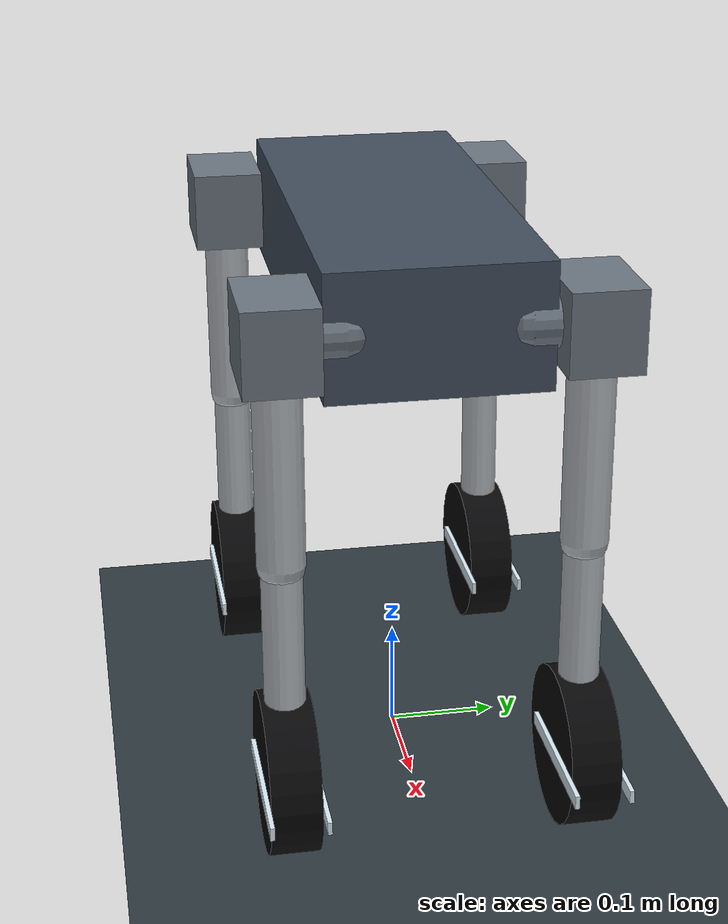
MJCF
<mujoco model="minidog_16dof_20kg">
  <compiler angle="radian" autolimits="true" />
  <size njmax="256" nconmax="128" />
  <option timestep="0.005" iterations="80" solver="Newton" cone="pyramidal" />

  <default>
    <joint damping="0.08" armature="0.01" />
    <geom condim="3" contype="1" conaffinity="1" friction="0.8 0.01 0.001" solref="0.005 1" solimp="0.9 0.99 0.001" />
  </default>

  <asset>
    <material name="body_mat" rgba="0.25 0.30 0.36 1" />
    <material name="hip_mat" rgba="0.42 0.46 0.50 1" />
    <material name="leg_mat" rgba="0.70 0.72 0.74 1" />
    <material name="wheel_mat" rgba="0.03 0.03 0.035 1" />
    <material name="wheel_stripe_mat" rgba="0.85 0.92 0.96 1" />
    <material name="floor_mat" rgba="0.18 0.22 0.24 1" />
  </asset>

  <worldbody>
    <light name="key_light" directional="true" pos="-1 1 3" dir="0 0 -1" />
    <geom name="floor" type="plane" size="20 20 0.05" material="floor_mat" />

    <body name="base_link" pos="0 0 0.48">
      <freejoint name="floating_base" />
      <inertial pos="0 0 0" mass="11.360048" diaginertia="0.045630 0.194730 0.217450" />
      <geom name="base_collision" type="box" size="0.22 0.095 0.055" material="body_mat" />
      <site name="base_site" pos="0 0 0" size="0.005" rgba="1 0 0 1" />

      <body name="fl_abad_link" pos="0.20128 0.07500 0">
        <joint name="fl_abad_joint" type="hinge" axis="-1 0 0" range="-0.60 0.60" actuatorfrcrange="-50 50" />
        <inertial pos="0 0.02750 0" mass="0.120473" diaginertia="0.000050 0.000050 0.000050" />
        <geom name="fl_abad_collision" type="capsule" fromto="0 0 0 0 0.05500 0" size="0.024" material="hip_mat" />
        <body name="fl_hip_link" pos="0 0.05500 0">
          <inertial pos="0 0 0" mass="0.300000" diaginertia="0.000260 0.000260 0.000260" />
          <geom name="fl_hip_collision" type="box" size="0.045 0.032 0.036" material="hip_mat" />
          <body name="fl_thigh_link">
            <joint name="fl_hip_joint" type="hinge" axis="0 -1 0" range="-2.30 2.60" actuatorfrcrange="-50 50" />
            <inertial pos="0 0 -0.10000" mass="0.913236" diaginertia="0.003350 0.003250 0.000340" />
            <geom name="fl_thigh_collision" type="capsule" fromto="0 0 0 0 0 -0.20000" size="0.021" material="leg_mat" />
            <body name="fl_shank_link" pos="0 0 -0.20000">
              <joint name="fl_knee_joint" type="hinge" axis="0 -1 0" range="-2.80 2.80" actuatorfrcrange="-50 50" />
              <inertial pos="0 0 -0.10000" mass="0.530617" diaginertia="0.001850 0.001800 0.000200" />
              <geom name="fl_shank_collision" type="capsule" fromto="0 0 0 0 0 -0.20000" size="0.018" material="leg_mat" />
              <body name="fl_wheel_link" pos="0 0 -0.20000">
                <joint name="fl_wheel_joint" type="hinge" axis="0 -1 0" damping="0.02" armature="0.002" actuatorfrcrange="-12 12" />
                <inertial pos="0 0 0" mass="0.295662" diaginertia="0.000791 0.001533 0.000791" />
                <geom name="fl_wheel_collision" type="cylinder" size="0.072 0.022" euler="1.57079632679 0 0" material="wheel_mat" friction="1.0 0.01 0.001" />
                <geom name="fl_wheel_stripe_outer" type="box" pos="0.025 0.024 0" size="0.071 0.002 0.006" material="wheel_stripe_mat" contype="0" conaffinity="0" />
                <geom name="fl_wheel_stripe_inner" type="box" pos="0.025 -0.024 0" size="0.071 0.002 0.006" material="wheel_stripe_mat" contype="0" conaffinity="0" />
              </body>
            </body>
          </body>
        </body>
      </body>

      <body name="fr_abad_link" pos="0.20128 -0.07500 0">
        <joint name="fr_abad_joint" type="hinge" axis="-1 0 0" range="-0.60 0.60" actuatorfrcrange="-50 50" />
        <inertial pos="0 -0.02750 0" mass="0.120473" diaginertia="0.000050 0.000050 0.000050" />
        <geom name="fr_abad_collision" type="capsule" fromto="0 0 0 0 -0.05500 0" size="0.024" material="hip_mat" />
        <body name="fr_hip_link" pos="0 -0.05500 0">
          <inertial pos="0 0 0" mass="0.300000" diaginertia="0.000260 0.000260 0.000260" />
          <geom name="fr_hip_collision" type="box" size="0.045 0.032 0.036" material="hip_mat" />
          <body name="fr_thigh_link">
            <joint name="fr_hip_joint" type="hinge" axis="0 -1 0" range="-2.30 2.60" actuatorfrcrange="-50 50" />
            <inertial pos="0 0 -0.10000" mass="0.913236" diaginertia="0.003350 0.003250 0.000340" />
            <geom name="fr_thigh_collision" type="capsule" fromto="0 0 0 0 0 -0.20000" size="0.021" material="leg_mat" />
            <body name="fr_shank_link" pos="0 0 -0.20000">
              <joint name="fr_knee_joint" type="hinge" axis="0 -1 0" range="-2.80 2.80" actuatorfrcrange="-50 50" />
              <inertial pos="0 0 -0.10000" mass="0.530617" diaginertia="0.001850 0.001800 0.000200" />
              <geom name="fr_shank_collision" type="capsule" fromto="0 0 0 0 0 -0.20000" size="0.018" material="leg_mat" />
              <body name="fr_wheel_link" pos="0 0 -0.20000">
                <joint name="fr_wheel_joint" type="hinge" axis="0 -1 0" damping="0.02" armature="0.002" actuatorfrcrange="-12 12" />
                <inertial pos="0 0 0" mass="0.295662" diaginertia="0.000791 0.001533 0.000791" />
                <geom name="fr_wheel_collision" type="cylinder" size="0.072 0.022" euler="1.57079632679 0 0" material="wheel_mat" friction="1.0 0.01 0.001" />
                <geom name="fr_wheel_stripe_outer" type="box" pos="0.025 -0.024 0" size="0.071 0.002 0.006" material="wheel_stripe_mat" contype="0" conaffinity="0" />
                <geom name="fr_wheel_stripe_inner" type="box" pos="0.025 0.024 0" size="0.071 0.002 0.006" material="wheel_stripe_mat" contype="0" conaffinity="0" />
              </body>
            </body>
          </body>
        </body>
      </body>

      <body name="hl_abad_link" pos="-0.20128 0.07500 0">
        <joint name="hl_abad_joint" type="hinge" axis="-1 0 0" range="-0.60 0.60" actuatorfrcrange="-50 50" />
        <inertial pos="0 0.02750 0" mass="0.120473" diaginertia="0.000050 0.000050 0.000050" />
        <geom name="hl_abad_collision" type="capsule" fromto="0 0 0 0 0.05500 0" size="0.024" material="hip_mat" />
        <body name="hl_hip_link" pos="0 0.05500 0">
          <inertial pos="0 0 0" mass="0.300000" diaginertia="0.000260 0.000260 0.000260" />
          <geom name="hl_hip_collision" type="box" size="0.045 0.032 0.036" material="hip_mat" />
          <body name="hl_thigh_link">
            <joint name="hl_hip_joint" type="hinge" axis="0 -1 0" range="-2.60 2.30" actuatorfrcrange="-50 50" />
            <inertial pos="0 0 -0.10000" mass="0.913236" diaginertia="0.003350 0.003250 0.000340" />
            <geom name="hl_thigh_collision" type="capsule" fromto="0 0 0 0 0 -0.20000" size="0.021" material="leg_mat" />
            <body name="hl_shank_link" pos="0 0 -0.20000">
              <joint name="hl_knee_joint" type="hinge" axis="0 -1 0" range="-2.80 2.80" actuatorfrcrange="-50 50" />
              <inertial pos="0 0 -0.10000" mass="0.530617" diaginertia="0.001850 0.001800 0.000200" />
              <geom name="hl_shank_collision" type="capsule" fromto="0 0 0 0 0 -0.20000" size="0.018" material="leg_mat" />
              <body name="hl_wheel_link" pos="0 0 -0.20000">
                <joint name="hl_wheel_joint" type="hinge" axis="0 -1 0" damping="0.02" armature="0.002" actuatorfrcrange="-12 12" />
                <inertial pos="0 0 0" mass="0.295662" diaginertia="0.000791 0.001533 0.000791" />
                <geom name="hl_wheel_collision" type="cylinder" size="0.072 0.022" euler="1.57079632679 0 0" material="wheel_mat" friction="1.0 0.01 0.001" />
                <geom name="hl_wheel_stripe_outer" type="box" pos="0.025 0.024 0" size="0.071 0.002 0.006" material="wheel_stripe_mat" contype="0" conaffinity="0" />
                <geom name="hl_wheel_stripe_inner" type="box" pos="0.025 -0.024 0" size="0.071 0.002 0.006" material="wheel_stripe_mat" contype="0" conaffinity="0" />
              </body>
            </body>
          </body>
        </body>
      </body>

      <body name="hr_abad_link" pos="-0.20128 -0.07500 0">
        <joint name="hr_abad_joint" type="hinge" axis="-1 0 0" range="-0.60 0.60" actuatorfrcrange="-50 50" />
        <inertial pos="0 -0.02750 0" mass="0.120473" diaginertia="0.000050 0.000050 0.000050" />
        <geom name="hr_abad_collision" type="capsule" fromto="0 0 0 0 -0.05500 0" size="0.024" material="hip_mat" />
        <body name="hr_hip_link" pos="0 -0.05500 0">
          <inertial pos="0 0 0" mass="0.300000" diaginertia="0.000260 0.000260 0.000260" />
          <geom name="hr_hip_collision" type="box" size="0.045 0.032 0.036" material="hip_mat" />
          <body name="hr_thigh_link">
            <joint name="hr_hip_joint" type="hinge" axis="0 -1 0" range="-2.60 2.30" actuatorfrcrange="-50 50" />
            <inertial pos="0 0 -0.10000" mass="0.913236" diaginertia="0.003350 0.003250 0.000340" />
            <geom name="hr_thigh_collision" type="capsule" fromto="0 0 0 0 0 -0.20000" size="0.021" material="leg_mat" />
            <body name="hr_shank_link" pos="0 0 -0.20000">
              <joint name="hr_knee_joint" type="hinge" axis="0 -1 0" range="-2.80 2.80" actuatorfrcrange="-50 50" />
              <inertial pos="0 0 -0.10000" mass="0.530617" diaginertia="0.001850 0.001800 0.000200" />
              <geom name="hr_shank_collision" type="capsule" fromto="0 0 0 0 0 -0.20000" size="0.018" material="leg_mat" />
              <body name="hr_wheel_link" pos="0 0 -0.20000">
                <joint name="hr_wheel_joint" type="hinge" axis="0 -1 0" damping="0.02" armature="0.002" actuatorfrcrange="-12 12" />
                <inertial pos="0 0 0" mass="0.295662" diaginertia="0.000791 0.001533 0.000791" />
                <geom name="hr_wheel_collision" type="cylinder" size="0.072 0.022" euler="1.57079632679 0 0" material="wheel_mat" friction="1.0 0.01 0.001" />
                <geom name="hr_wheel_stripe_outer" type="box" pos="0.025 -0.024 0" size="0.071 0.002 0.006" material="wheel_stripe_mat" contype="0" conaffinity="0" />
                <geom name="hr_wheel_stripe_inner" type="box" pos="0.025 0.024 0" size="0.071 0.002 0.006" material="wheel_stripe_mat" contype="0" conaffinity="0" />
              </body>
            </body>
          </body>
        </body>
      </body>
    </body>
  </worldbody>

  <actuator>
    <motor name="fl_abad_motor" joint="fl_abad_joint" ctrllimited="true" ctrlrange="-50 50" gear="1" />
    <motor name="fl_hip_motor" joint="fl_hip_joint" ctrllimited="true" ctrlrange="-50 50" gear="1" />
    <motor name="fl_knee_motor" joint="fl_knee_joint" ctrllimited="true" ctrlrange="-50 50" gear="1" />
    <motor name="fl_wheel_motor" joint="fl_wheel_joint" ctrllimited="true" ctrlrange="-12 12" gear="1" />
    <motor name="fr_abad_motor" joint="fr_abad_joint" ctrllimited="true" ctrlrange="-50 50" gear="1" />
    <motor name="fr_hip_motor" joint="fr_hip_joint" ctrllimited="true" ctrlrange="-50 50" gear="1" />
    <motor name="fr_knee_motor" joint="fr_knee_joint" ctrllimited="true" ctrlrange="-50 50" gear="1" />
    <motor name="fr_wheel_motor" joint="fr_wheel_joint" ctrllimited="true" ctrlrange="-12 12" gear="1" />
    <motor name="hl_abad_motor" joint="hl_abad_joint" ctrllimited="true" ctrlrange="-50 50" gear="1" />
    <motor name="hl_hip_motor" joint="hl_hip_joint" ctrllimited="true" ctrlrange="-50 50" gear="1" />
    <motor name="hl_knee_motor" joint="hl_knee_joint" ctrllimited="true" ctrlrange="-50 50" gear="1" />
    <motor name="hl_wheel_motor" joint="hl_wheel_joint" ctrllimited="true" ctrlrange="-12 12" gear="1" />
    <motor name="hr_abad_motor" joint="hr_abad_joint" ctrllimited="true" ctrlrange="-50 50" gear="1" />
    <motor name="hr_hip_motor" joint="hr_hip_joint" ctrllimited="true" ctrlrange="-50 50" gear="1" />
    <motor name="hr_knee_motor" joint="hr_knee_joint" ctrllimited="true" ctrlrange="-50 50" gear="1" />
    <motor name="hr_wheel_motor" joint="hr_wheel_joint" ctrllimited="true" ctrlrange="-12 12" gear="1" />
  </actuator>

  <contact>
    <exclude body1="base_link" body2="fl_abad_link" />
    <exclude body1="fl_abad_link" body2="fl_hip_link" />
    <exclude body1="fl_hip_link" body2="fl_thigh_link" />
    <exclude body1="fl_thigh_link" body2="fl_shank_link" />
    <exclude body1="fl_shank_link" body2="fl_wheel_link" />
    <exclude body1="base_link" body2="fr_abad_link" />
    <exclude body1="fr_abad_link" body2="fr_hip_link" />
    <exclude body1="fr_hip_link" body2="fr_thigh_link" />
    <exclude body1="fr_thigh_link" body2="fr_shank_link" />
    <exclude body1="fr_shank_link" body2="fr_wheel_link" />
    <exclude body1="base_link" body2="hl_abad_link" />
    <exclude body1="hl_abad_link" body2="hl_hip_link" />
    <exclude body1="hl_hip_link" body2="hl_thigh_link" />
    <exclude body1="hl_thigh_link" body2="hl_shank_link" />
    <exclude body1="hl_shank_link" body2="hl_wheel_link" />
    <exclude body1="base_link" body2="hr_abad_link" />
    <exclude body1="hr_abad_link" body2="hr_hip_link" />
    <exclude body1="hr_hip_link" body2="hr_thigh_link" />
    <exclude body1="hr_thigh_link" body2="hr_shank_link" />
    <exclude body1="hr_shank_link" body2="hr_wheel_link" />
  </contact>
</mujoco>
